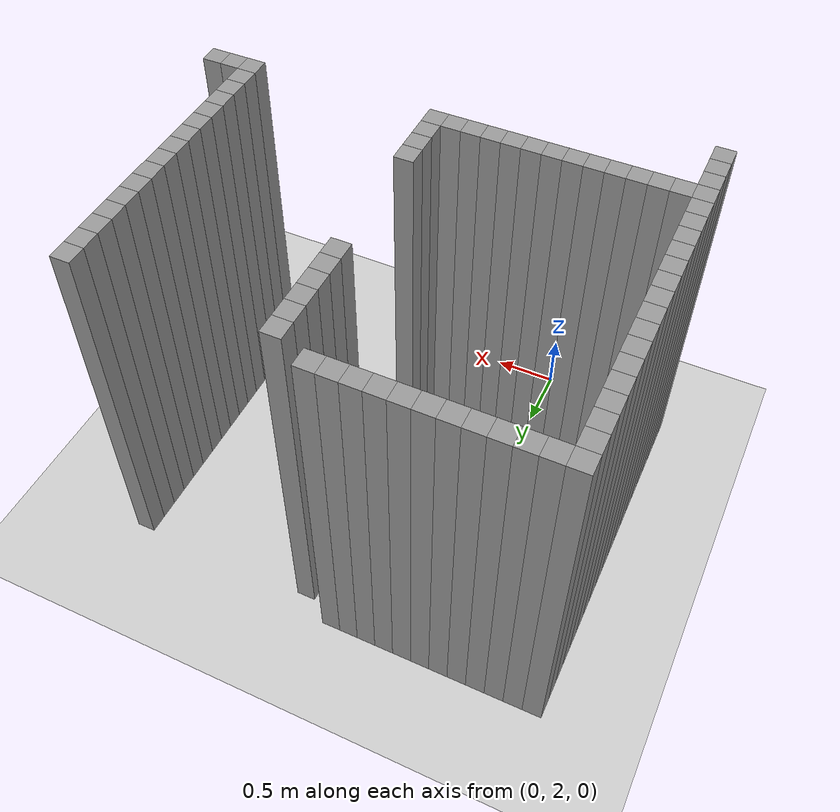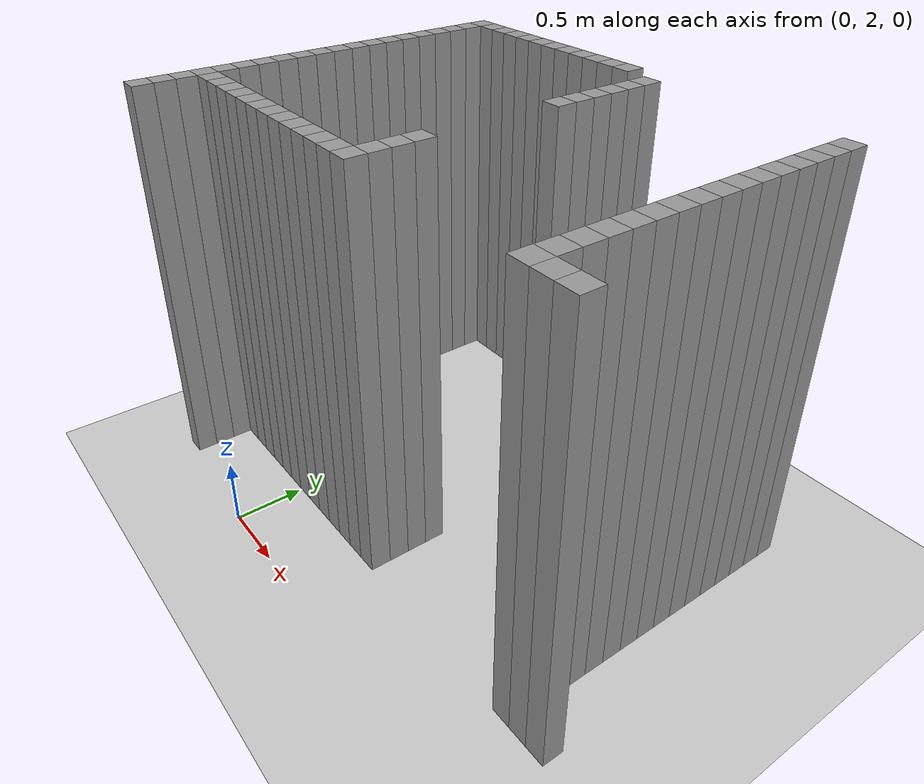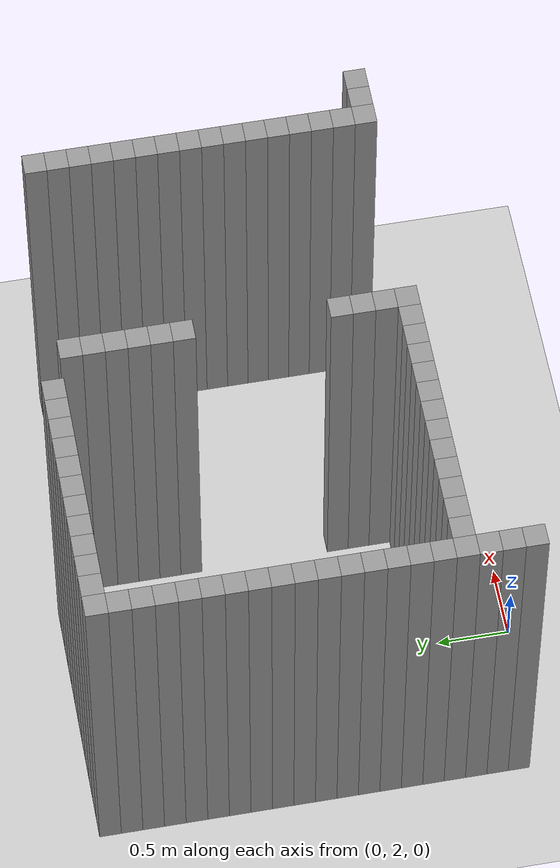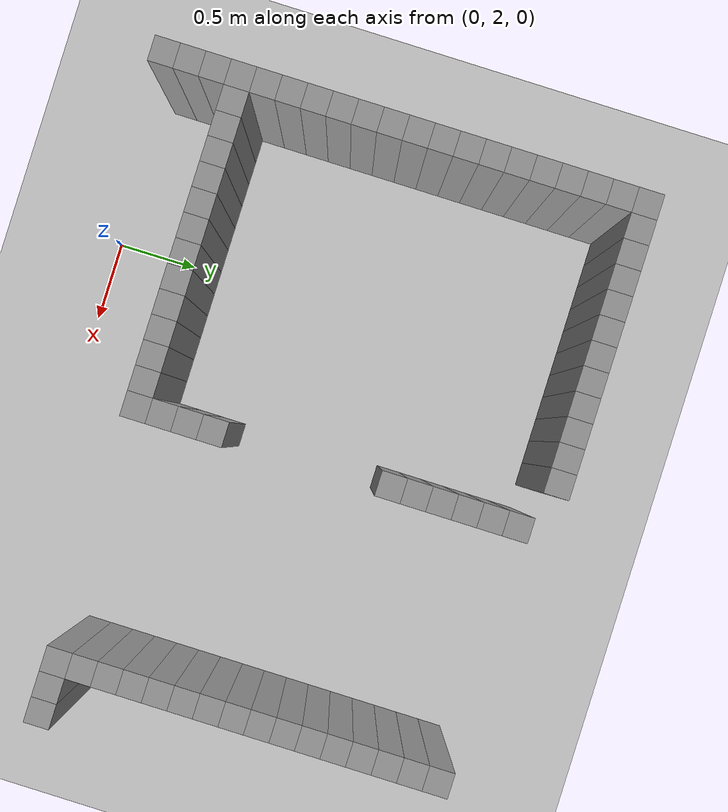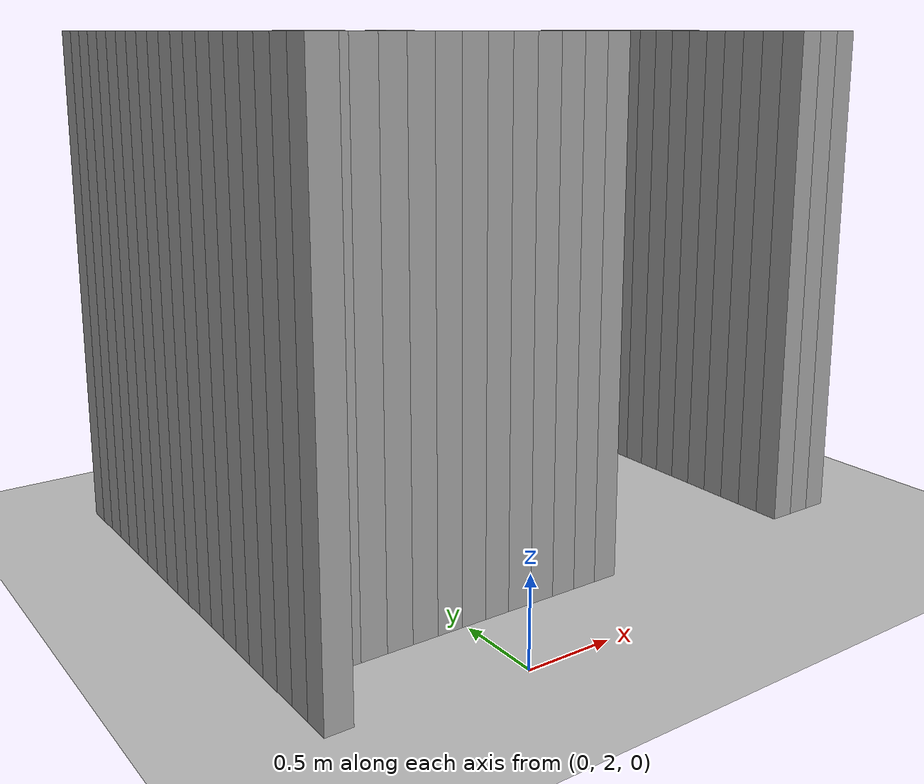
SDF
<sdf version="1.7">
 <world name="default">
  <model name="ground_plane">
   <static>1</static>
   <link name="link">
    <collision name="collision">
     <geometry><plane><normal>0 0 1</normal><size>100 100</size></plane></geometry>
     <surface>
      <contact><collide_bitmask>65535</collide_bitmask></contact>
      <friction><ode><mu>100</mu><mu2>50</mu2></ode></friction>
     </surface>
    </collision>
    <visual name="visual">
     <cast_shadows>0</cast_shadows>
     <geometry><plane><normal>0 0 1</normal><size>100 100</size></plane></geometry>
     <material>
      <script><uri>file://media/materials/scripts/gazebo.material</uri><name>Gazebo/Grey</name></script>
     </material>
    </visual>
   </link>
  </model>
  <model name="image45001">
   <pose>-1 -1 0 0 -0 0</pose>
   <link name="Wall_21">
    <collision name="Wall_21_Collision">
     <geometry><box><size>0.15 0.15 3</size></box></geometry>
     <pose>0 0 1.5 0 -0 0</pose>
    </collision>
    <visual name="Wall_21_Visual">
     <pose>0 0 1.5 0 -0 0</pose>
     <geometry><box><size>0.15 0.15 3</size></box></geometry>
     <material>
      <script><uri>file://media/materials/scripts/gazebo.material</uri><name>Gazebo/Grey</name></script>
      <ambient>1 1 1 1</ambient>
     </material>
     <meta><layer>0</layer></meta>
    </visual>
    <pose>0.0 3.15 0 0 -0 0</pose>
   </link>
   <link name="Wall_22">
    <collision name="Wall_22_Collision">
     <geometry><box><size>0.15 0.15 3</size></box></geometry>
     <pose>0 0 1.5 0 -0 0</pose>
    </collision>
    <visual name="Wall_22_Visual">
     <pose>0 0 1.5 0 -0 0</pose>
     <geometry><box><size>0.15 0.15 3</size></box></geometry>
     <material>
      <script><uri>file://media/materials/scripts/gazebo.material</uri><name>Gazebo/Grey</name></script>
      <ambient>1 1 1 1</ambient>
     </material>
     <meta><layer>0</layer></meta>
    </visual>
    <pose>0.0 3.3 0 0 -0 0</pose>
   </link>
   <link name="Wall_23">
    <collision name="Wall_23_Collision">
     <geometry><box><size>0.15 0.15 3</size></box></geometry>
     <pose>0 0 1.5 0 -0 0</pose>
    </collision>
    <visual name="Wall_23_Visual">
     <pose>0 0 1.5 0 -0 0</pose>
     <geometry><box><size>0.15 0.15 3</size></box></geometry>
     <material>
      <script><uri>file://media/materials/scripts/gazebo.material</uri><name>Gazebo/Grey</name></script>
      <ambient>1 1 1 1</ambient>
     </material>
     <meta><layer>0</layer></meta>
    </visual>
    <pose>0.0 3.4499999999999997 0 0 -0 0</pose>
   </link>
   <link name="Wall_24">
    <collision name="Wall_24_Collision">
     <geometry><box><size>0.15 0.15 3</size></box></geometry>
     <pose>0 0 1.5 0 -0 0</pose>
    </collision>
    <visual name="Wall_24_Visual">
     <pose>0 0 1.5 0 -0 0</pose>
     <geometry><box><size>0.15 0.15 3</size></box></geometry>
     <material>
      <script><uri>file://media/materials/scripts/gazebo.material</uri><name>Gazebo/Grey</name></script>
      <ambient>1 1 1 1</ambient>
     </material>
     <meta><layer>0</layer></meta>
    </visual>
    <pose>0.0 3.5999999999999996 0 0 -0 0</pose>
   </link>
   <link name="Wall_25">
    <collision name="Wall_25_Collision">
     <geometry><box><size>0.15 0.15 3</size></box></geometry>
     <pose>0 0 1.5 0 -0 0</pose>
    </collision>
    <visual name="Wall_25_Visual">
     <pose>0 0 1.5 0 -0 0</pose>
     <geometry><box><size>0.15 0.15 3</size></box></geometry>
     <material>
      <script><uri>file://media/materials/scripts/gazebo.material</uri><name>Gazebo/Grey</name></script>
      <ambient>1 1 1 1</ambient>
     </material>
     <meta><layer>0</layer></meta>
    </visual>
    <pose>0.0 3.75 0 0 -0 0</pose>
   </link>
   <link name="Wall_26">
    <collision name="Wall_26_Collision">
     <geometry><box><size>0.15 0.15 3</size></box></geometry>
     <pose>0 0 1.5 0 -0 0</pose>
    </collision>
    <visual name="Wall_26_Visual">
     <pose>0 0 1.5 0 -0 0</pose>
     <geometry><box><size>0.15 0.15 3</size></box></geometry>
     <material>
      <script><uri>file://media/materials/scripts/gazebo.material</uri><name>Gazebo/Grey</name></script>
      <ambient>1 1 1 1</ambient>
     </material>
     <meta><layer>0</layer></meta>
    </visual>
    <pose>0.0 3.9 0 0 -0 0</pose>
   </link>
   <link name="Wall_27">
    <collision name="Wall_27_Collision">
     <geometry><box><size>0.15 0.15 3</size></box></geometry>
     <pose>0 0 1.5 0 -0 0</pose>
    </collision>
    <visual name="Wall_27_Visual">
     <pose>0 0 1.5 0 -0 0</pose>
     <geometry><box><size>0.15 0.15 3</size></box></geometry>
     <material>
      <script><uri>file://media/materials/scripts/gazebo.material</uri><name>Gazebo/Grey</name></script>
      <ambient>1 1 1 1</ambient>
     </material>
     <meta><layer>0</layer></meta>
    </visual>
    <pose>0.0 4.05 0 0 -0 0</pose>
   </link>
   <link name="Wall_28">
    <collision name="Wall_28_Collision">
     <geometry><box><size>0.15 0.15 3</size></box></geometry>
     <pose>0 0 1.5 0 -0 0</pose>
    </collision>
    <visual name="Wall_28_Visual">
     <pose>0 0 1.5 0 -0 0</pose>
     <geometry><box><size>0.15 0.15 3</size></box></geometry>
     <material>
      <script><uri>file://media/materials/scripts/gazebo.material</uri><name>Gazebo/Grey</name></script>
      <ambient>1 1 1 1</ambient>
     </material>
     <meta><layer>0</layer></meta>
    </visual>
    <pose>0.0 4.2 0 0 -0 0</pose>
   </link>
   <link name="Wall_29">
    <collision name="Wall_29_Collision">
     <geometry><box><size>0.15 0.15 3</size></box></geometry>
     <pose>0 0 1.5 0 -0 0</pose>
    </collision>
    <visual name="Wall_29_Visual">
     <pose>0 0 1.5 0 -0 0</pose>
     <geometry><box><size>0.15 0.15 3</size></box></geometry>
     <material>
      <script><uri>file://media/materials/scripts/gazebo.material</uri><name>Gazebo/Grey</name></script>
      <ambient>1 1 1 1</ambient>
     </material>
     <meta><layer>0</layer></meta>
    </visual>
    <pose>0.0 4.35 0 0 -0 0</pose>
   </link>
   <link name="Wall_30">
    <collision name="Wall_30_Collision">
     <geometry><box><size>0.15 0.15 3</size></box></geometry>
     <pose>0 0 1.5 0 -0 0</pose>
    </collision>
    <visual name="Wall_30_Visual">
     <pose>0 0 1.5 0 -0 0</pose>
     <geometry><box><size>0.15 0.15 3</size></box></geometry>
     <material>
      <script><uri>file://media/materials/scripts/gazebo.material</uri><name>Gazebo/Grey</name></script>
      <ambient>1 1 1 1</ambient>
     </material>
     <meta><layer>0</layer></meta>
    </visual>
    <pose>0.0 4.5 0 0 -0 0</pose>
   </link>
   <link name="Wall_31">
    <collision name="Wall_31_Collision">
     <geometry><box><size>0.15 0.15 3</size></box></geometry>
     <pose>0 0 1.5 0 -0 0</pose>
    </collision>
    <visual name="Wall_31_Visual">
     <pose>0 0 1.5 0 -0 0</pose>
     <geometry><box><size>0.15 0.15 3</size></box></geometry>
     <material>
      <script><uri>file://media/materials/scripts/gazebo.material</uri><name>Gazebo/Grey</name></script>
      <ambient>1 1 1 1</ambient>
     </material>
     <meta><layer>0</layer></meta>
    </visual>
    <pose>0.0 4.6499999999999995 0 0 -0 0</pose>
   </link>
   <link name="Wall_32">
    <collision name="Wall_32_Collision">
     <geometry><box><size>0.15 0.15 3</size></box></geometry>
     <pose>0 0 1.5 0 -0 0</pose>
    </collision>
    <visual name="Wall_32_Visual">
     <pose>0 0 1.5 0 -0 0</pose>
     <geometry><box><size>0.15 0.15 3</size></box></geometry>
     <material>
      <script><uri>file://media/materials/scripts/gazebo.material</uri><name>Gazebo/Grey</name></script>
      <ambient>1 1 1 1</ambient>
     </material>
     <meta><layer>0</layer></meta>
    </visual>
    <pose>0.0 4.8 0 0 -0 0</pose>
   </link>
   <link name="Wall_33">
    <collision name="Wall_33_Collision">
     <geometry><box><size>0.15 0.15 3</size></box></geometry>
     <pose>0 0 1.5 0 -0 0</pose>
    </collision>
    <visual name="Wall_33_Visual">
     <pose>0 0 1.5 0 -0 0</pose>
     <geometry><box><size>0.15 0.15 3</size></box></geometry>
     <material>
      <script><uri>file://media/materials/scripts/gazebo.material</uri><name>Gazebo/Grey</name></script>
      <ambient>1 1 1 1</ambient>
     </material>
     <meta><layer>0</layer></meta>
    </visual>
    <pose>0.0 4.95 0 0 -0 0</pose>
   </link>
   <link name="Wall_34">
    <collision name="Wall_34_Collision">
     <geometry><box><size>0.15 0.15 3</size></box></geometry>
     <pose>0 0 1.5 0 -0 0</pose>
    </collision>
    <visual name="Wall_34_Visual">
     <pose>0 0 1.5 0 -0 0</pose>
     <geometry><box><size>0.15 0.15 3</size></box></geometry>
     <material>
      <script><uri>file://media/materials/scripts/gazebo.material</uri><name>Gazebo/Grey</name></script>
      <ambient>1 1 1 1</ambient>
     </material>
     <meta><layer>0</layer></meta>
    </visual>
    <pose>0.0 5.1 0 0 -0 0</pose>
   </link>
   <link name="Wall_35">
    <collision name="Wall_35_Collision">
     <geometry><box><size>0.15 0.15 3</size></box></geometry>
     <pose>0 0 1.5 0 -0 0</pose>
    </collision>
    <visual name="Wall_35_Visual">
     <pose>0 0 1.5 0 -0 0</pose>
     <geometry><box><size>0.15 0.15 3</size></box></geometry>
     <material>
      <script><uri>file://media/materials/scripts/gazebo.material</uri><name>Gazebo/Grey</name></script>
      <ambient>1 1 1 1</ambient>
     </material>
     <meta><layer>0</layer></meta>
    </visual>
    <pose>0.0 5.25 0 0 -0 0</pose>
   </link>
   <link name="Wall_36">
    <collision name="Wall_36_Collision">
     <geometry><box><size>0.15 0.15 3</size></box></geometry>
     <pose>0 0 1.5 0 -0 0</pose>
    </collision>
    <visual name="Wall_36_Visual">
     <pose>0 0 1.5 0 -0 0</pose>
     <geometry><box><size>0.15 0.15 3</size></box></geometry>
     <material>
      <script><uri>file://media/materials/scripts/gazebo.material</uri><name>Gazebo/Grey</name></script>
      <ambient>1 1 1 1</ambient>
     </material>
     <meta><layer>0</layer></meta>
    </visual>
    <pose>0.0 5.3999999999999995 0 0 -0 0</pose>
   </link>
   <link name="Wall_37">
    <collision name="Wall_37_Collision">
     <geometry><box><size>0.15 0.15 3</size></box></geometry>
     <pose>0 0 1.5 0 -0 0</pose>
    </collision>
    <visual name="Wall_37_Visual">
     <pose>0 0 1.5 0 -0 0</pose>
     <geometry><box><size>0.15 0.15 3</size></box></geometry>
     <material>
      <script><uri>file://media/materials/scripts/gazebo.material</uri><name>Gazebo/Grey</name></script>
      <ambient>1 1 1 1</ambient>
     </material>
     <meta><layer>0</layer></meta>
    </visual>
    <pose>0.0 5.55 0 0 -0 0</pose>
   </link>
   <link name="Wall_38">
    <collision name="Wall_38_Collision">
     <geometry><box><size>0.15 0.15 3</size></box></geometry>
     <pose>0 0 1.5 0 -0 0</pose>
    </collision>
    <visual name="Wall_38_Visual">
     <pose>0 0 1.5 0 -0 0</pose>
     <geometry><box><size>0.15 0.15 3</size></box></geometry>
     <material>
      <script><uri>file://media/materials/scripts/gazebo.material</uri><name>Gazebo/Grey</name></script>
      <ambient>1 1 1 1</ambient>
     </material>
     <meta><layer>0</layer></meta>
    </visual>
    <pose>0.0 5.7 0 0 -0 0</pose>
   </link>
   <link name="Wall_39">
    <collision name="Wall_39_Collision">
     <geometry><box><size>0.15 0.15 3</size></box></geometry>
     <pose>0 0 1.5 0 -0 0</pose>
    </collision>
    <visual name="Wall_39_Visual">
     <pose>0 0 1.5 0 -0 0</pose>
     <geometry><box><size>0.15 0.15 3</size></box></geometry>
     <material>
      <script><uri>file://media/materials/scripts/gazebo.material</uri><name>Gazebo/Grey</name></script>
      <ambient>1 1 1 1</ambient>
     </material>
     <meta><layer>0</layer></meta>
    </visual>
    <pose>0.0 5.85 0 0 -0 0</pose>
   </link>
   <link name="Wall_40">
    <collision name="Wall_40_Collision">
     <geometry><box><size>0.15 0.15 3</size></box></geometry>
     <pose>0 0 1.5 0 -0 0</pose>
    </collision>
    <visual name="Wall_40_Visual">
     <pose>0 0 1.5 0 -0 0</pose>
     <geometry><box><size>0.15 0.15 3</size></box></geometry>
     <material>
      <script><uri>file://media/materials/scripts/gazebo.material</uri><name>Gazebo/Grey</name></script>
      <ambient>1 1 1 1</ambient>
     </material>
     <meta><layer>0</layer></meta>
    </visual>
    <pose>0.0 6.0 0 0 -0 0</pose>
   </link>
   <link name="Wall_62">
    <collision name="Wall_62_Collision">
     <geometry><box><size>0.15 0.15 3</size></box></geometry>
     <pose>0 0 1.5 0 -0 0</pose>
    </collision>
    <visual name="Wall_62_Visual">
     <pose>0 0 1.5 0 -0 0</pose>
     <geometry><box><size>0.15 0.15 3</size></box></geometry>
     <material>
      <script><uri>file://media/materials/scripts/gazebo.material</uri><name>Gazebo/Grey</name></script>
      <ambient>1 1 1 1</ambient>
     </material>
     <meta><layer>0</layer></meta>
    </visual>
    <pose>0.15 3.5999999999999996 0 0 -0 0</pose>
   </link>
   <link name="Wall_63">
    <collision name="Wall_63_Collision">
     <geometry><box><size>0.15 0.15 3</size></box></geometry>
     <pose>0 0 1.5 0 -0 0</pose>
    </collision>
    <visual name="Wall_63_Visual">
     <pose>0 0 1.5 0 -0 0</pose>
     <geometry><box><size>0.15 0.15 3</size></box></geometry>
     <material>
      <script><uri>file://media/materials/scripts/gazebo.material</uri><name>Gazebo/Grey</name></script>
      <ambient>1 1 1 1</ambient>
     </material>
     <meta><layer>0</layer></meta>
    </visual>
    <pose>0.15 6.0 0 0 -0 0</pose>
   </link>
   <link name="Wall_67">
    <collision name="Wall_67_Collision">
     <geometry><box><size>0.15 0.15 3</size></box></geometry>
     <pose>0 0 1.5 0 -0 0</pose>
    </collision>
    <visual name="Wall_67_Visual">
     <pose>0 0 1.5 0 -0 0</pose>
     <geometry><box><size>0.15 0.15 3</size></box></geometry>
     <material>
      <script><uri>file://media/materials/scripts/gazebo.material</uri><name>Gazebo/Grey</name></script>
      <ambient>1 1 1 1</ambient>
     </material>
     <meta><layer>0</layer></meta>
    </visual>
    <pose>0.3 3.5999999999999996 0 0 -0 0</pose>
   </link>
   <link name="Wall_68">
    <collision name="Wall_68_Collision">
     <geometry><box><size>0.15 0.15 3</size></box></geometry>
     <pose>0 0 1.5 0 -0 0</pose>
    </collision>
    <visual name="Wall_68_Visual">
     <pose>0 0 1.5 0 -0 0</pose>
     <geometry><box><size>0.15 0.15 3</size></box></geometry>
     <material>
      <script><uri>file://media/materials/scripts/gazebo.material</uri><name>Gazebo/Grey</name></script>
      <ambient>1 1 1 1</ambient>
     </material>
     <meta><layer>0</layer></meta>
    </visual>
    <pose>0.3 6.0 0 0 -0 0</pose>
   </link>
   <link name="Wall_72">
    <collision name="Wall_72_Collision">
     <geometry><box><size>0.15 0.15 3</size></box></geometry>
     <pose>0 0 1.5 0 -0 0</pose>
    </collision>
    <visual name="Wall_72_Visual">
     <pose>0 0 1.5 0 -0 0</pose>
     <geometry><box><size>0.15 0.15 3</size></box></geometry>
     <material>
      <script><uri>file://media/materials/scripts/gazebo.material</uri><name>Gazebo/Grey</name></script>
      <ambient>1 1 1 1</ambient>
     </material>
     <meta><layer>0</layer></meta>
    </visual>
    <pose>0.44999999999999996 3.5999999999999996 0 0 -0 0</pose>
   </link>
   <link name="Wall_73">
    <collision name="Wall_73_Collision">
     <geometry><box><size>0.15 0.15 3</size></box></geometry>
     <pose>0 0 1.5 0 -0 0</pose>
    </collision>
    <visual name="Wall_73_Visual">
     <pose>0 0 1.5 0 -0 0</pose>
     <geometry><box><size>0.15 0.15 3</size></box></geometry>
     <material>
      <script><uri>file://media/materials/scripts/gazebo.material</uri><name>Gazebo/Grey</name></script>
      <ambient>1 1 1 1</ambient>
     </material>
     <meta><layer>0</layer></meta>
    </visual>
    <pose>0.44999999999999996 6.0 0 0 -0 0</pose>
   </link>
   <link name="Wall_76">
    <collision name="Wall_76_Collision">
     <geometry><box><size>0.15 0.15 3</size></box></geometry>
     <pose>0 0 1.5 0 -0 0</pose>
    </collision>
    <visual name="Wall_76_Visual">
     <pose>0 0 1.5 0 -0 0</pose>
     <geometry><box><size>0.15 0.15 3</size></box></geometry>
     <material>
      <script><uri>file://media/materials/scripts/gazebo.material</uri><name>Gazebo/Grey</name></script>
      <ambient>1 1 1 1</ambient>
     </material>
     <meta><layer>0</layer></meta>
    </visual>
    <pose>0.6 3.5999999999999996 0 0 -0 0</pose>
   </link>
   <link name="Wall_77">
    <collision name="Wall_77_Collision">
     <geometry><box><size>0.15 0.15 3</size></box></geometry>
     <pose>0 0 1.5 0 -0 0</pose>
    </collision>
    <visual name="Wall_77_Visual">
     <pose>0 0 1.5 0 -0 0</pose>
     <geometry><box><size>0.15 0.15 3</size></box></geometry>
     <material>
      <script><uri>file://media/materials/scripts/gazebo.material</uri><name>Gazebo/Grey</name></script>
      <ambient>1 1 1 1</ambient>
     </material>
     <meta><layer>0</layer></meta>
    </visual>
    <pose>0.6 6.0 0 0 -0 0</pose>
   </link>
   <link name="Wall_80">
    <collision name="Wall_80_Collision">
     <geometry><box><size>0.15 0.15 3</size></box></geometry>
     <pose>0 0 1.5 0 -0 0</pose>
    </collision>
    <visual name="Wall_80_Visual">
     <pose>0 0 1.5 0 -0 0</pose>
     <geometry><box><size>0.15 0.15 3</size></box></geometry>
     <material>
      <script><uri>file://media/materials/scripts/gazebo.material</uri><name>Gazebo/Grey</name></script>
      <ambient>1 1 1 1</ambient>
     </material>
     <meta><layer>0</layer></meta>
    </visual>
    <pose>0.75 3.5999999999999996 0 0 -0 0</pose>
   </link>
   <link name="Wall_81">
    <collision name="Wall_81_Collision">
     <geometry><box><size>0.15 0.15 3</size></box></geometry>
     <pose>0 0 1.5 0 -0 0</pose>
    </collision>
    <visual name="Wall_81_Visual">
     <pose>0 0 1.5 0 -0 0</pose>
     <geometry><box><size>0.15 0.15 3</size></box></geometry>
     <material>
      <script><uri>file://media/materials/scripts/gazebo.material</uri><name>Gazebo/Grey</name></script>
      <ambient>1 1 1 1</ambient>
     </material>
     <meta><layer>0</layer></meta>
    </visual>
    <pose>0.75 6.0 0 0 -0 0</pose>
   </link>
   <link name="Wall_84">
    <collision name="Wall_84_Collision">
     <geometry><box><size>0.15 0.15 3</size></box></geometry>
     <pose>0 0 1.5 0 -0 0</pose>
    </collision>
    <visual name="Wall_84_Visual">
     <pose>0 0 1.5 0 -0 0</pose>
     <geometry><box><size>0.15 0.15 3</size></box></geometry>
     <material>
      <script><uri>file://media/materials/scripts/gazebo.material</uri><name>Gazebo/Grey</name></script>
      <ambient>1 1 1 1</ambient>
     </material>
     <meta><layer>0</layer></meta>
    </visual>
    <pose>0.8999999999999999 3.5999999999999996 0 0 -0 0</pose>
   </link>
   <link name="Wall_85">
    <collision name="Wall_85_Collision">
     <geometry><box><size>0.15 0.15 3</size></box></geometry>
     <pose>0 0 1.5 0 -0 0</pose>
    </collision>
    <visual name="Wall_85_Visual">
     <pose>0 0 1.5 0 -0 0</pose>
     <geometry><box><size>0.15 0.15 3</size></box></geometry>
     <material>
      <script><uri>file://media/materials/scripts/gazebo.material</uri><name>Gazebo/Grey</name></script>
      <ambient>1 1 1 1</ambient>
     </material>
     <meta><layer>0</layer></meta>
    </visual>
    <pose>0.8999999999999999 6.0 0 0 -0 0</pose>
   </link>
   <link name="Wall_88">
    <collision name="Wall_88_Collision">
     <geometry><box><size>0.15 0.15 3</size></box></geometry>
     <pose>0 0 1.5 0 -0 0</pose>
    </collision>
    <visual name="Wall_88_Visual">
     <pose>0 0 1.5 0 -0 0</pose>
     <geometry><box><size>0.15 0.15 3</size></box></geometry>
     <material>
      <script><uri>file://media/materials/scripts/gazebo.material</uri><name>Gazebo/Grey</name></script>
      <ambient>1 1 1 1</ambient>
     </material>
     <meta><layer>0</layer></meta>
    </visual>
    <pose>1.05 3.5999999999999996 0 0 -0 0</pose>
   </link>
   <link name="Wall_89">
    <collision name="Wall_89_Collision">
     <geometry><box><size>0.15 0.15 3</size></box></geometry>
     <pose>0 0 1.5 0 -0 0</pose>
    </collision>
    <visual name="Wall_89_Visual">
     <pose>0 0 1.5 0 -0 0</pose>
     <geometry><box><size>0.15 0.15 3</size></box></geometry>
     <material>
      <script><uri>file://media/materials/scripts/gazebo.material</uri><name>Gazebo/Grey</name></script>
      <ambient>1 1 1 1</ambient>
     </material>
     <meta><layer>0</layer></meta>
    </visual>
    <pose>1.05 6.0 0 0 -0 0</pose>
   </link>
   <link name="Wall_92">
    <collision name="Wall_92_Collision">
     <geometry><box><size>0.15 0.15 3</size></box></geometry>
     <pose>0 0 1.5 0 -0 0</pose>
    </collision>
    <visual name="Wall_92_Visual">
     <pose>0 0 1.5 0 -0 0</pose>
     <geometry><box><size>0.15 0.15 3</size></box></geometry>
     <material>
      <script><uri>file://media/materials/scripts/gazebo.material</uri><name>Gazebo/Grey</name></script>
      <ambient>1 1 1 1</ambient>
     </material>
     <meta><layer>0</layer></meta>
    </visual>
    <pose>1.2 3.5999999999999996 0 0 -0 0</pose>
   </link>
   <link name="Wall_93">
    <collision name="Wall_93_Collision">
     <geometry><box><size>0.15 0.15 3</size></box></geometry>
     <pose>0 0 1.5 0 -0 0</pose>
    </collision>
    <visual name="Wall_93_Visual">
     <pose>0 0 1.5 0 -0 0</pose>
     <geometry><box><size>0.15 0.15 3</size></box></geometry>
     <material>
      <script><uri>file://media/materials/scripts/gazebo.material</uri><name>Gazebo/Grey</name></script>
      <ambient>1 1 1 1</ambient>
     </material>
     <meta><layer>0</layer></meta>
    </visual>
    <pose>1.2 6.0 0 0 -0 0</pose>
   </link>
   <link name="Wall_96">
    <collision name="Wall_96_Collision">
     <geometry><box><size>0.15 0.15 3</size></box></geometry>
     <pose>0 0 1.5 0 -0 0</pose>
    </collision>
    <visual name="Wall_96_Visual">
     <pose>0 0 1.5 0 -0 0</pose>
     <geometry><box><size>0.15 0.15 3</size></box></geometry>
     <material>
      <script><uri>file://media/materials/scripts/gazebo.material</uri><name>Gazebo/Grey</name></script>
      <ambient>1 1 1 1</ambient>
     </material>
     <meta><layer>0</layer></meta>
    </visual>
    <pose>1.3499999999999999 3.5999999999999996 0 0 -0 0</pose>
   </link>
   <link name="Wall_97">
    <collision name="Wall_97_Collision">
     <geometry><box><size>0.15 0.15 3</size></box></geometry>
     <pose>0 0 1.5 0 -0 0</pose>
    </collision>
    <visual name="Wall_97_Visual">
     <pose>0 0 1.5 0 -0 0</pose>
     <geometry><box><size>0.15 0.15 3</size></box></geometry>
     <material>
      <script><uri>file://media/materials/scripts/gazebo.material</uri><name>Gazebo/Grey</name></script>
      <ambient>1 1 1 1</ambient>
     </material>
     <meta><layer>0</layer></meta>
    </visual>
    <pose>1.3499999999999999 6.0 0 0 -0 0</pose>
   </link>
   <link name="Wall_111">
    <collision name="Wall_111_Collision">
     <geometry><box><size>0.15 0.15 3</size></box></geometry>
     <pose>0 0 1.5 0 -0 0</pose>
    </collision>
    <visual name="Wall_111_Visual">
     <pose>0 0 1.5 0 -0 0</pose>
     <geometry><box><size>0.15 0.15 3</size></box></geometry>
     <material>
      <script><uri>file://media/materials/scripts/gazebo.material</uri><name>Gazebo/Grey</name></script>
      <ambient>1 1 1 1</ambient>
     </material>
     <meta><layer>0</layer></meta>
    </visual>
    <pose>1.5 3.5999999999999996 0 0 -0 0</pose>
   </link>
   <link name="Wall_112">
    <collision name="Wall_112_Collision">
     <geometry><box><size>0.15 0.15 3</size></box></geometry>
     <pose>0 0 1.5 0 -0 0</pose>
    </collision>
    <visual name="Wall_112_Visual">
     <pose>0 0 1.5 0 -0 0</pose>
     <geometry><box><size>0.15 0.15 3</size></box></geometry>
     <material>
      <script><uri>file://media/materials/scripts/gazebo.material</uri><name>Gazebo/Grey</name></script>
      <ambient>1 1 1 1</ambient>
     </material>
     <meta><layer>0</layer></meta>
    </visual>
    <pose>1.5 6.0 0 0 -0 0</pose>
   </link>
   <link name="Wall_117">
    <collision name="Wall_117_Collision">
     <geometry><box><size>0.15 0.15 3</size></box></geometry>
     <pose>0 0 1.5 0 -0 0</pose>
    </collision>
    <visual name="Wall_117_Visual">
     <pose>0 0 1.5 0 -0 0</pose>
     <geometry><box><size>0.15 0.15 3</size></box></geometry>
     <material>
      <script><uri>file://media/materials/scripts/gazebo.material</uri><name>Gazebo/Grey</name></script>
      <ambient>1 1 1 1</ambient>
     </material>
     <meta><layer>0</layer></meta>
    </visual>
    <pose>1.65 3.5999999999999996 0 0 -0 0</pose>
   </link>
   <link name="Wall_118">
    <collision name="Wall_118_Collision">
     <geometry><box><size>0.15 0.15 3</size></box></geometry>
     <pose>0 0 1.5 0 -0 0</pose>
    </collision>
    <visual name="Wall_118_Visual">
     <pose>0 0 1.5 0 -0 0</pose>
     <geometry><box><size>0.15 0.15 3</size></box></geometry>
     <material>
      <script><uri>file://media/materials/scripts/gazebo.material</uri><name>Gazebo/Grey</name></script>
      <ambient>1 1 1 1</ambient>
     </material>
     <meta><layer>0</layer></meta>
    </visual>
    <pose>1.65 6.0 0 0 -0 0</pose>
   </link>
   <link name="Wall_122">
    <collision name="Wall_122_Collision">
     <geometry><box><size>0.15 0.15 3</size></box></geometry>
     <pose>0 0 1.5 0 -0 0</pose>
    </collision>
    <visual name="Wall_122_Visual">
     <pose>0 0 1.5 0 -0 0</pose>
     <geometry><box><size>0.15 0.15 3</size></box></geometry>
     <material>
      <script><uri>file://media/materials/scripts/gazebo.material</uri><name>Gazebo/Grey</name></script>
      <ambient>1 1 1 1</ambient>
     </material>
     <meta><layer>0</layer></meta>
    </visual>
    <pose>1.7999999999999998 3.5999999999999996 0 0 -0 0</pose>
   </link>
   <link name="Wall_127">
    <collision name="Wall_127_Collision">
     <geometry><box><size>0.15 0.15 3</size></box></geometry>
     <pose>0 0 1.5 0 -0 0</pose>
    </collision>
    <visual name="Wall_127_Visual">
     <pose>0 0 1.5 0 -0 0</pose>
     <geometry><box><size>0.15 0.15 3</size></box></geometry>
     <material>
      <script><uri>file://media/materials/scripts/gazebo.material</uri><name>Gazebo/Grey</name></script>
      <ambient>1 1 1 1</ambient>
     </material>
     <meta><layer>0</layer></meta>
    </visual>
    <pose>1.95 3.5999999999999996 0 0 -0 0</pose>
   </link>
   <link name="Wall_128">
    <collision name="Wall_128_Collision">
     <geometry><box><size>0.15 0.15 3</size></box></geometry>
     <pose>0 0 1.5 0 -0 0</pose>
    </collision>
    <visual name="Wall_128_Visual">
     <pose>0 0 1.5 0 -0 0</pose>
     <geometry><box><size>0.15 0.15 3</size></box></geometry>
     <material>
      <script><uri>file://media/materials/scripts/gazebo.material</uri><name>Gazebo/Grey</name></script>
      <ambient>1 1 1 1</ambient>
     </material>
     <meta><layer>0</layer></meta>
    </visual>
    <pose>1.95 3.75 0 0 -0 0</pose>
   </link>
   <link name="Wall_129">
    <collision name="Wall_129_Collision">
     <geometry><box><size>0.15 0.15 3</size></box></geometry>
     <pose>0 0 1.5 0 -0 0</pose>
    </collision>
    <visual name="Wall_129_Visual">
     <pose>0 0 1.5 0 -0 0</pose>
     <geometry><box><size>0.15 0.15 3</size></box></geometry>
     <material>
      <script><uri>file://media/materials/scripts/gazebo.material</uri><name>Gazebo/Grey</name></script>
      <ambient>1 1 1 1</ambient>
     </material>
     <meta><layer>0</layer></meta>
    </visual>
    <pose>1.95 3.9 0 0 -0 0</pose>
   </link>
   <link name="Wall_130">
    <collision name="Wall_130_Collision">
     <geometry><box><size>0.15 0.15 3</size></box></geometry>
     <pose>0 0 1.5 0 -0 0</pose>
    </collision>
    <visual name="Wall_130_Visual">
     <pose>0 0 1.5 0 -0 0</pose>
     <geometry><box><size>0.15 0.15 3</size></box></geometry>
     <material>
      <script><uri>file://media/materials/scripts/gazebo.material</uri><name>Gazebo/Grey</name></script>
      <ambient>1 1 1 1</ambient>
     </material>
     <meta><layer>0</layer></meta>
    </visual>
    <pose>1.95 4.05 0 0 -0 0</pose>
   </link>
   <link name="Wall_131">
    <collision name="Wall_131_Collision">
     <geometry><box><size>0.15 0.15 3</size></box></geometry>
     <pose>0 0 1.5 0 -0 0</pose>
    </collision>
    <visual name="Wall_131_Visual">
     <pose>0 0 1.5 0 -0 0</pose>
     <geometry><box><size>0.15 0.15 3</size></box></geometry>
     <material>
      <script><uri>file://media/materials/scripts/gazebo.material</uri><name>Gazebo/Grey</name></script>
      <ambient>1 1 1 1</ambient>
     </material>
     <meta><layer>0</layer></meta>
    </visual>
    <pose>1.95 5.1 0 0 -0 0</pose>
   </link>
   <link name="Wall_132">
    <collision name="Wall_132_Collision">
     <geometry><box><size>0.15 0.15 3</size></box></geometry>
     <pose>0 0 1.5 0 -0 0</pose>
    </collision>
    <visual name="Wall_132_Visual">
     <pose>0 0 1.5 0 -0 0</pose>
     <geometry><box><size>0.15 0.15 3</size></box></geometry>
     <material>
      <script><uri>file://media/materials/scripts/gazebo.material</uri><name>Gazebo/Grey</name></script>
      <ambient>1 1 1 1</ambient>
     </material>
     <meta><layer>0</layer></meta>
    </visual>
    <pose>1.95 5.25 0 0 -0 0</pose>
   </link>
   <link name="Wall_133">
    <collision name="Wall_133_Collision">
     <geometry><box><size>0.15 0.15 3</size></box></geometry>
     <pose>0 0 1.5 0 -0 0</pose>
    </collision>
    <visual name="Wall_133_Visual">
     <pose>0 0 1.5 0 -0 0</pose>
     <geometry><box><size>0.15 0.15 3</size></box></geometry>
     <material>
      <script><uri>file://media/materials/scripts/gazebo.material</uri><name>Gazebo/Grey</name></script>
      <ambient>1 1 1 1</ambient>
     </material>
     <meta><layer>0</layer></meta>
    </visual>
    <pose>1.95 5.3999999999999995 0 0 -0 0</pose>
   </link>
   <link name="Wall_134">
    <collision name="Wall_134_Collision">
     <geometry><box><size>0.15 0.15 3</size></box></geometry>
     <pose>0 0 1.5 0 -0 0</pose>
    </collision>
    <visual name="Wall_134_Visual">
     <pose>0 0 1.5 0 -0 0</pose>
     <geometry><box><size>0.15 0.15 3</size></box></geometry>
     <material>
      <script><uri>file://media/materials/scripts/gazebo.material</uri><name>Gazebo/Grey</name></script>
      <ambient>1 1 1 1</ambient>
     </material>
     <meta><layer>0</layer></meta>
    </visual>
    <pose>1.95 5.55 0 0 -0 0</pose>
   </link>
   <link name="Wall_135">
    <collision name="Wall_135_Collision">
     <geometry><box><size>0.15 0.15 3</size></box></geometry>
     <pose>0 0 1.5 0 -0 0</pose>
    </collision>
    <visual name="Wall_135_Visual">
     <pose>0 0 1.5 0 -0 0</pose>
     <geometry><box><size>0.15 0.15 3</size></box></geometry>
     <material>
      <script><uri>file://media/materials/scripts/gazebo.material</uri><name>Gazebo/Grey</name></script>
      <ambient>1 1 1 1</ambient>
     </material>
     <meta><layer>0</layer></meta>
    </visual>
    <pose>1.95 5.7 0 0 -0 0</pose>
   </link>
   <link name="Wall_136">
    <collision name="Wall_136_Collision">
     <geometry><box><size>0.15 0.15 3</size></box></geometry>
     <pose>0 0 1.5 0 -0 0</pose>
    </collision>
    <visual name="Wall_136_Visual">
     <pose>0 0 1.5 0 -0 0</pose>
     <geometry><box><size>0.15 0.15 3</size></box></geometry>
     <material>
      <script><uri>file://media/materials/scripts/gazebo.material</uri><name>Gazebo/Grey</name></script>
      <ambient>1 1 1 1</ambient>
     </material>
     <meta><layer>0</layer></meta>
    </visual>
    <pose>1.95 5.85 0 0 -0 0</pose>
   </link>
   <link name="Wall_187">
    <collision name="Wall_187_Collision">
     <geometry><box><size>0.15 0.15 3</size></box></geometry>
     <pose>0 0 1.5 0 -0 0</pose>
    </collision>
    <visual name="Wall_187_Visual">
     <pose>0 0 1.5 0 -0 0</pose>
     <geometry><box><size>0.15 0.15 3</size></box></geometry>
     <material>
      <script><uri>file://media/materials/scripts/gazebo.material</uri><name>Gazebo/Grey</name></script>
      <ambient>1 1 1 1</ambient>
     </material>
     <meta><layer>0</layer></meta>
    </visual>
    <pose>3.4499999999999997 3.5999999999999996 0 0 -0 0</pose>
   </link>
   <link name="Wall_188">
    <collision name="Wall_188_Collision">
     <geometry><box><size>0.15 0.15 3</size></box></geometry>
     <pose>0 0 1.5 0 -0 0</pose>
    </collision>
    <visual name="Wall_188_Visual">
     <pose>0 0 1.5 0 -0 0</pose>
     <geometry><box><size>0.15 0.15 3</size></box></geometry>
     <material>
      <script><uri>file://media/materials/scripts/gazebo.material</uri><name>Gazebo/Grey</name></script>
      <ambient>1 1 1 1</ambient>
     </material>
     <meta><layer>0</layer></meta>
    </visual>
    <pose>3.4499999999999997 3.75 0 0 -0 0</pose>
   </link>
   <link name="Wall_189">
    <collision name="Wall_189_Collision">
     <geometry><box><size>0.15 0.15 3</size></box></geometry>
     <pose>0 0 1.5 0 -0 0</pose>
    </collision>
    <visual name="Wall_189_Visual">
     <pose>0 0 1.5 0 -0 0</pose>
     <geometry><box><size>0.15 0.15 3</size></box></geometry>
     <material>
      <script><uri>file://media/materials/scripts/gazebo.material</uri><name>Gazebo/Grey</name></script>
      <ambient>1 1 1 1</ambient>
     </material>
     <meta><layer>0</layer></meta>
    </visual>
    <pose>3.4499999999999997 3.9 0 0 -0 0</pose>
   </link>
   <link name="Wall_190">
    <collision name="Wall_190_Collision">
     <geometry><box><size>0.15 0.15 3</size></box></geometry>
     <pose>0 0 1.5 0 -0 0</pose>
    </collision>
    <visual name="Wall_190_Visual">
     <pose>0 0 1.5 0 -0 0</pose>
     <geometry><box><size>0.15 0.15 3</size></box></geometry>
     <material>
      <script><uri>file://media/materials/scripts/gazebo.material</uri><name>Gazebo/Grey</name></script>
      <ambient>1 1 1 1</ambient>
     </material>
     <meta><layer>0</layer></meta>
    </visual>
    <pose>3.4499999999999997 4.05 0 0 -0 0</pose>
   </link>
   <link name="Wall_191">
    <collision name="Wall_191_Collision">
     <geometry><box><size>0.15 0.15 3</size></box></geometry>
     <pose>0 0 1.5 0 -0 0</pose>
    </collision>
    <visual name="Wall_191_Visual">
     <pose>0 0 1.5 0 -0 0</pose>
     <geometry><box><size>0.15 0.15 3</size></box></geometry>
     <material>
      <script><uri>file://media/materials/scripts/gazebo.material</uri><name>Gazebo/Grey</name></script>
      <ambient>1 1 1 1</ambient>
     </material>
     <meta><layer>0</layer></meta>
    </visual>
    <pose>3.4499999999999997 4.2 0 0 -0 0</pose>
   </link>
   <link name="Wall_192">
    <collision name="Wall_192_Collision">
     <geometry><box><size>0.15 0.15 3</size></box></geometry>
     <pose>0 0 1.5 0 -0 0</pose>
    </collision>
    <visual name="Wall_192_Visual">
     <pose>0 0 1.5 0 -0 0</pose>
     <geometry><box><size>0.15 0.15 3</size></box></geometry>
     <material>
      <script><uri>file://media/materials/scripts/gazebo.material</uri><name>Gazebo/Grey</name></script>
      <ambient>1 1 1 1</ambient>
     </material>
     <meta><layer>0</layer></meta>
    </visual>
    <pose>3.4499999999999997 4.35 0 0 -0 0</pose>
   </link>
   <link name="Wall_193">
    <collision name="Wall_193_Collision">
     <geometry><box><size>0.15 0.15 3</size></box></geometry>
     <pose>0 0 1.5 0 -0 0</pose>
    </collision>
    <visual name="Wall_193_Visual">
     <pose>0 0 1.5 0 -0 0</pose>
     <geometry><box><size>0.15 0.15 3</size></box></geometry>
     <material>
      <script><uri>file://media/materials/scripts/gazebo.material</uri><name>Gazebo/Grey</name></script>
      <ambient>1 1 1 1</ambient>
     </material>
     <meta><layer>0</layer></meta>
    </visual>
    <pose>3.4499999999999997 4.5 0 0 -0 0</pose>
   </link>
   <link name="Wall_194">
    <collision name="Wall_194_Collision">
     <geometry><box><size>0.15 0.15 3</size></box></geometry>
     <pose>0 0 1.5 0 -0 0</pose>
    </collision>
    <visual name="Wall_194_Visual">
     <pose>0 0 1.5 0 -0 0</pose>
     <geometry><box><size>0.15 0.15 3</size></box></geometry>
     <material>
      <script><uri>file://media/materials/scripts/gazebo.material</uri><name>Gazebo/Grey</name></script>
      <ambient>1 1 1 1</ambient>
     </material>
     <meta><layer>0</layer></meta>
    </visual>
    <pose>3.4499999999999997 4.6499999999999995 0 0 -0 0</pose>
   </link>
   <link name="Wall_195">
    <collision name="Wall_195_Collision">
     <geometry><box><size>0.15 0.15 3</size></box></geometry>
     <pose>0 0 1.5 0 -0 0</pose>
    </collision>
    <visual name="Wall_195_Visual">
     <pose>0 0 1.5 0 -0 0</pose>
     <geometry><box><size>0.15 0.15 3</size></box></geometry>
     <material>
      <script><uri>file://media/materials/scripts/gazebo.material</uri><name>Gazebo/Grey</name></script>
      <ambient>1 1 1 1</ambient>
     </material>
     <meta><layer>0</layer></meta>
    </visual>
    <pose>3.4499999999999997 4.8 0 0 -0 0</pose>
   </link>
   <link name="Wall_196">
    <collision name="Wall_196_Collision">
     <geometry><box><size>0.15 0.15 3</size></box></geometry>
     <pose>0 0 1.5 0 -0 0</pose>
    </collision>
    <visual name="Wall_196_Visual">
     <pose>0 0 1.5 0 -0 0</pose>
     <geometry><box><size>0.15 0.15 3</size></box></geometry>
     <material>
      <script><uri>file://media/materials/scripts/gazebo.material</uri><name>Gazebo/Grey</name></script>
      <ambient>1 1 1 1</ambient>
     </material>
     <meta><layer>0</layer></meta>
    </visual>
    <pose>3.4499999999999997 4.95 0 0 -0 0</pose>
   </link>
   <link name="Wall_197">
    <collision name="Wall_197_Collision">
     <geometry><box><size>0.15 0.15 3</size></box></geometry>
     <pose>0 0 1.5 0 -0 0</pose>
    </collision>
    <visual name="Wall_197_Visual">
     <pose>0 0 1.5 0 -0 0</pose>
     <geometry><box><size>0.15 0.15 3</size></box></geometry>
     <material>
      <script><uri>file://media/materials/scripts/gazebo.material</uri><name>Gazebo/Grey</name></script>
      <ambient>1 1 1 1</ambient>
     </material>
     <meta><layer>0</layer></meta>
    </visual>
    <pose>3.4499999999999997 5.1 0 0 -0 0</pose>
   </link>
   <link name="Wall_198">
    <collision name="Wall_198_Collision">
     <geometry><box><size>0.15 0.15 3</size></box></geometry>
     <pose>0 0 1.5 0 -0 0</pose>
    </collision>
    <visual name="Wall_198_Visual">
     <pose>0 0 1.5 0 -0 0</pose>
     <geometry><box><size>0.15 0.15 3</size></box></geometry>
     <material>
      <script><uri>file://media/materials/scripts/gazebo.material</uri><name>Gazebo/Grey</name></script>
      <ambient>1 1 1 1</ambient>
     </material>
     <meta><layer>0</layer></meta>
    </visual>
    <pose>3.4499999999999997 5.25 0 0 -0 0</pose>
   </link>
   <link name="Wall_199">
    <collision name="Wall_199_Collision">
     <geometry><box><size>0.15 0.15 3</size></box></geometry>
     <pose>0 0 1.5 0 -0 0</pose>
    </collision>
    <visual name="Wall_199_Visual">
     <pose>0 0 1.5 0 -0 0</pose>
     <geometry><box><size>0.15 0.15 3</size></box></geometry>
     <material>
      <script><uri>file://media/materials/scripts/gazebo.material</uri><name>Gazebo/Grey</name></script>
      <ambient>1 1 1 1</ambient>
     </material>
     <meta><layer>0</layer></meta>
    </visual>
    <pose>3.4499999999999997 5.3999999999999995 0 0 -0 0</pose>
   </link>
   <link name="Wall_200">
    <collision name="Wall_200_Collision">
     <geometry><box><size>0.15 0.15 3</size></box></geometry>
     <pose>0 0 1.5 0 -0 0</pose>
    </collision>
    <visual name="Wall_200_Visual">
     <pose>0 0 1.5 0 -0 0</pose>
     <geometry><box><size>0.15 0.15 3</size></box></geometry>
     <material>
      <script><uri>file://media/materials/scripts/gazebo.material</uri><name>Gazebo/Grey</name></script>
      <ambient>1 1 1 1</ambient>
     </material>
     <meta><layer>0</layer></meta>
    </visual>
    <pose>3.4499999999999997 5.55 0 0 -0 0</pose>
   </link>
   <link name="Wall_201">
    <collision name="Wall_201_Collision">
     <geometry><box><size>0.15 0.15 3</size></box></geometry>
     <pose>0 0 1.5 0 -0 0</pose>
    </collision>
    <visual name="Wall_201_Visual">
     <pose>0 0 1.5 0 -0 0</pose>
     <geometry><box><size>0.15 0.15 3</size></box></geometry>
     <material>
      <script><uri>file://media/materials/scripts/gazebo.material</uri><name>Gazebo/Grey</name></script>
      <ambient>1 1 1 1</ambient>
     </material>
     <meta><layer>0</layer></meta>
    </visual>
    <pose>3.4499999999999997 5.7 0 0 -0 0</pose>
   </link>
   <link name="Wall_202">
    <collision name="Wall_202_Collision">
     <geometry><box><size>0.15 0.15 3</size></box></geometry>
     <pose>0 0 1.5 0 -0 0</pose>
    </collision>
    <visual name="Wall_202_Visual">
     <pose>0 0 1.5 0 -0 0</pose>
     <geometry><box><size>0.15 0.15 3</size></box></geometry>
     <material>
      <script><uri>file://media/materials/scripts/gazebo.material</uri><name>Gazebo/Grey</name></script>
      <ambient>1 1 1 1</ambient>
     </material>
     <meta><layer>0</layer></meta>
    </visual>
    <pose>3.4499999999999997 5.85 0 0 -0 0</pose>
   </link>
   <link name="Wall_207">
    <collision name="Wall_207_Collision">
     <geometry><box><size>0.15 0.15 3</size></box></geometry>
     <pose>0 0 1.5 0 -0 0</pose>
    </collision>
    <visual name="Wall_207_Visual">
     <pose>0 0 1.5 0 -0 0</pose>
     <geometry><box><size>0.15 0.15 3</size></box></geometry>
     <material>
      <script><uri>file://media/materials/scripts/gazebo.material</uri><name>Gazebo/Grey</name></script>
      <ambient>1 1 1 1</ambient>
     </material>
     <meta><layer>0</layer></meta>
    </visual>
    <pose>3.5999999999999996 3.5999999999999996 0 0 -0 0</pose>
   </link>
   <link name="Wall_212">
    <collision name="Wall_212_Collision">
     <geometry><box><size>0.15 0.15 3</size></box></geometry>
     <pose>0 0 1.5 0 -0 0</pose>
    </collision>
    <visual name="Wall_212_Visual">
     <pose>0 0 1.5 0 -0 0</pose>
     <geometry><box><size>0.15 0.15 3</size></box></geometry>
     <material>
      <script><uri>file://media/materials/scripts/gazebo.material</uri><name>Gazebo/Grey</name></script>
      <ambient>1 1 1 1</ambient>
     </material>
     <meta><layer>0</layer></meta>
    </visual>
    <pose>3.75 3.5999999999999996 0 0 -0 0</pose>
   </link>
   <static>1</static>
  </model>
 </world>
</sdf>
